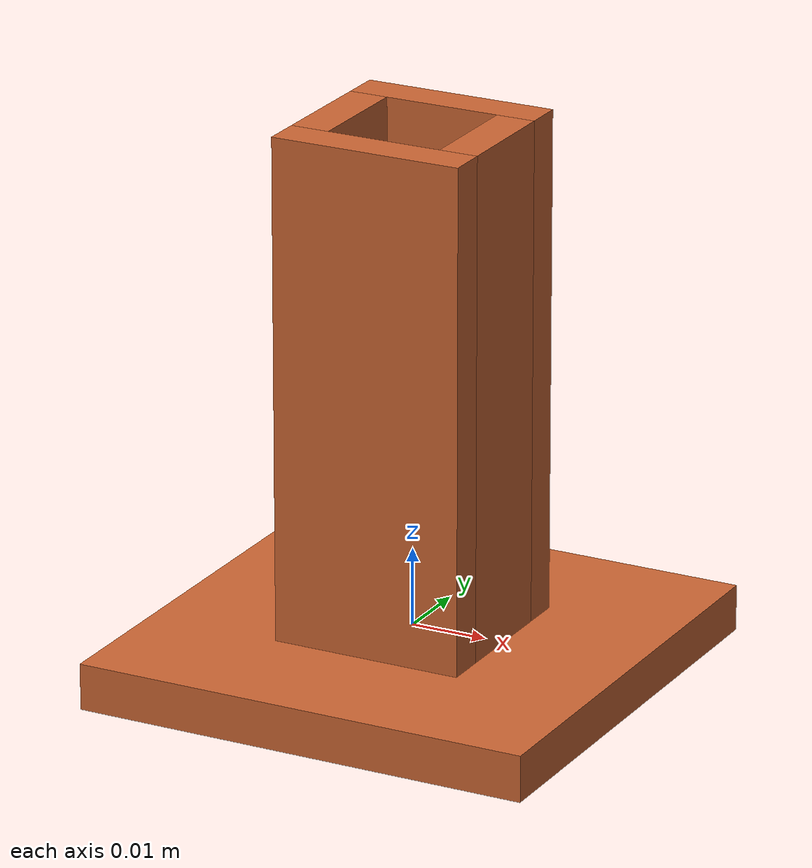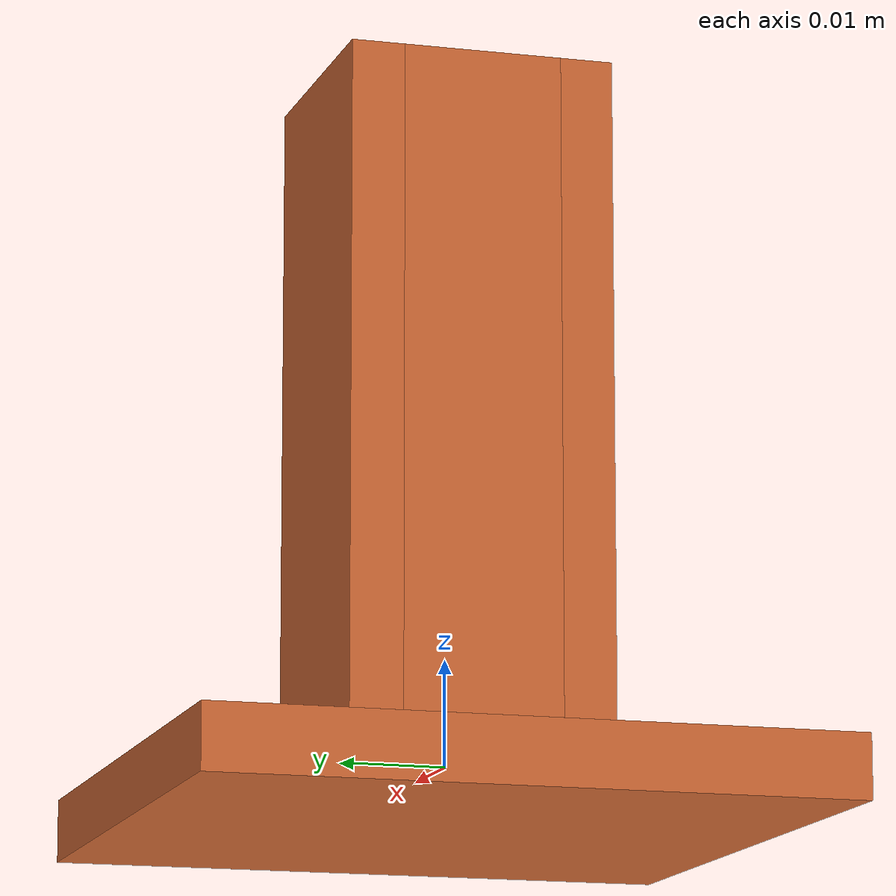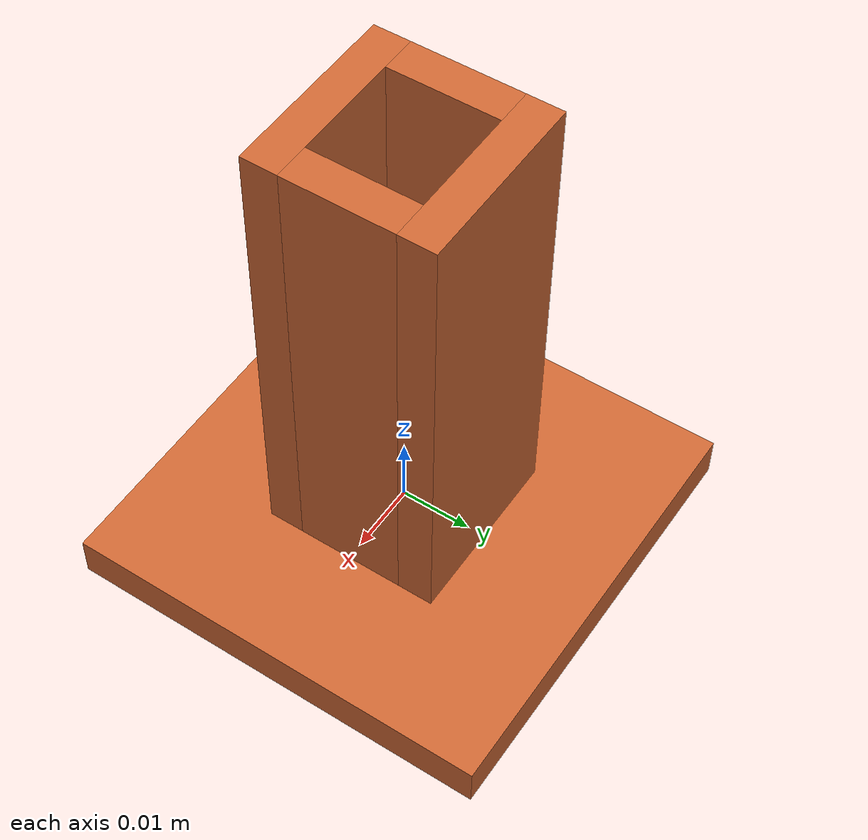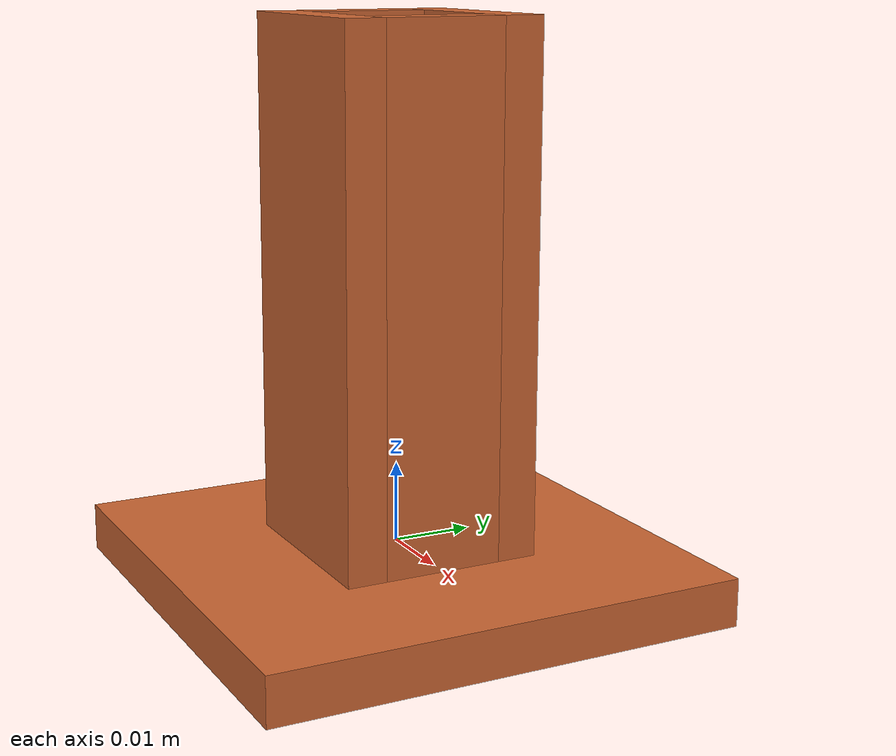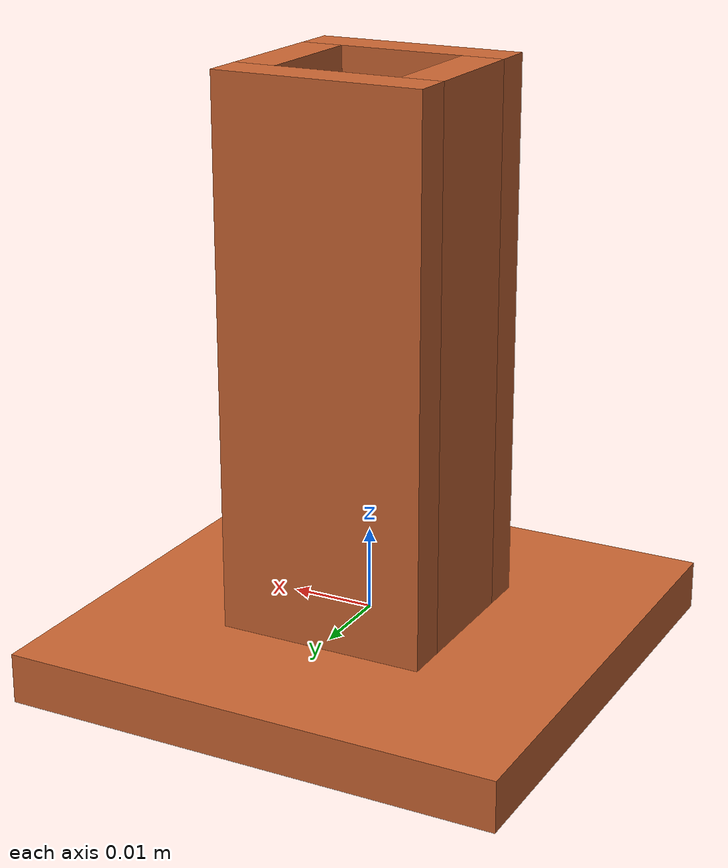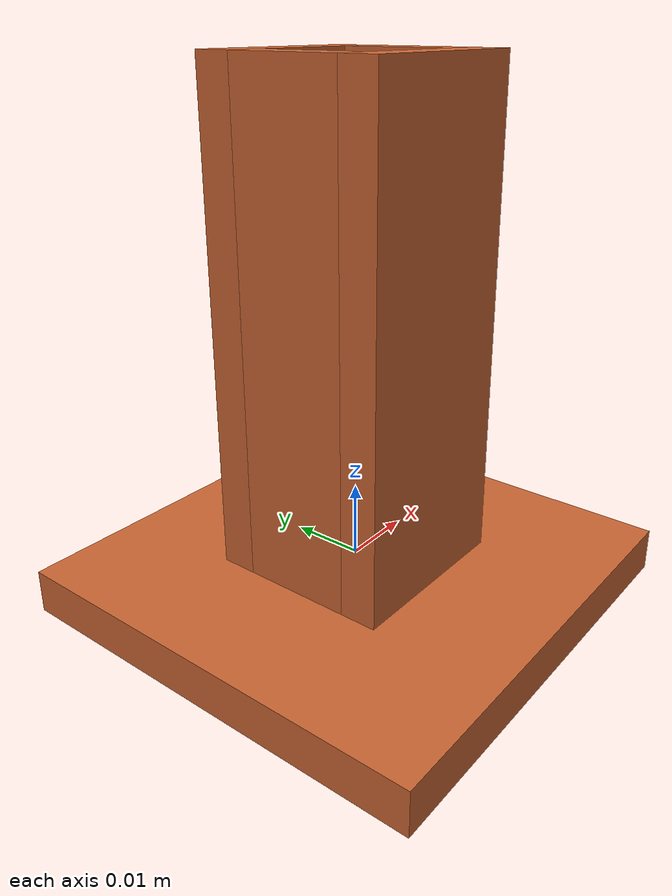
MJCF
<?xml version="1.0"?>
<mujoco model="hole">
  <worldbody>
    <body name="hole" mocap="true">
      <!-- Base plate of the hole receptacle -->
      <geom type="box" name="hole_base" size="0.03 0.03 0.003" pos="0 0 -0.003" rgba="0.8 0.4 0.2 1.0" condim="4" friction="3 0.1 0.01" contype="1" conaffinity="1" solref="0.01 1" solimp="0.95 0.99 0.001 0.5 2"/>

      <!-- Four walls forming a square hole (opening 1.5cm x 1.5cm for 1cm peg) -->
      <!-- Wall thickness: 0.5cm, Wall height: 6.5cm -->

      <!-- Front wall (+Y side) -->
      <geom type="box" name="hole_wall_front" size="0.0125 0.0025 0.0325" pos="0 0.01 0.0325" rgba="0.8 0.4 0.2 1.0" condim="4" friction="3 0.1 0.01" contype="1" conaffinity="1" solref="0.01 1" solimp="0.95 0.99 0.001 0.5 2"/>

      <!-- Back wall (-Y side) -->
      <geom type="box" name="hole_wall_back" size="0.0125 0.0025 0.0325" pos="0 -0.01 0.0325" rgba="0.8 0.4 0.2 1.0" condim="4" friction="3 0.1 0.01" contype="1" conaffinity="1" solref="0.01 1" solimp="0.95 0.99 0.001 0.5 2"/>

      <!-- Left wall (-X side) -->
      <geom type="box" name="hole_wall_left" size="0.0025 0.0075 0.0325" pos="-0.01 0 0.0325" rgba="0.8 0.4 0.2 1.0" condim="4" friction="3 0.1 0.01" contype="1" conaffinity="1" solref="0.01 1" solimp="0.95 0.99 0.001 0.5 2"/>

      <!-- Right wall (+X side) -->
      <geom type="box" name="hole_wall_right" size="0.0025 0.0075 0.0325" pos="0.01 0 0.0325" rgba="0.8 0.4 0.2 1.0" condim="4" friction="3 0.1 0.01" contype="1" conaffinity="1" solref="0.01 1" solimp="0.95 0.99 0.001 0.5 2"/>

      <!-- Sites for observations — invisible, visualised via viser debug_vis -->
      <site name="hole_bounds_viz" type="box" size="0.015 0.015 0.07" pos="0 0 0" rgba="0 0 0 0" group="4"/>
      <site name="object_site" pos="0 0 0.045"  size="0.0001" rgba="0 0 0 0" group="4"/>
      <site name="hole_top"    pos="0 0 0.07"   size="0.0001" rgba="0 0 0 0" group="4"/>
      <site name="hole_bottom" pos="0 0 0.02"   size="0.0001" rgba="0 0 0 0" group="4"/>
    </body>
  </worldbody>
</mujoco>
